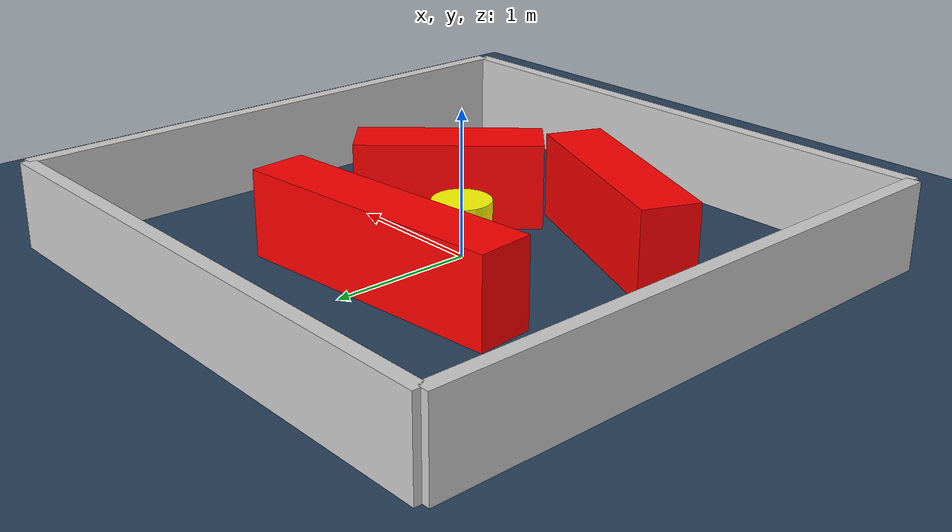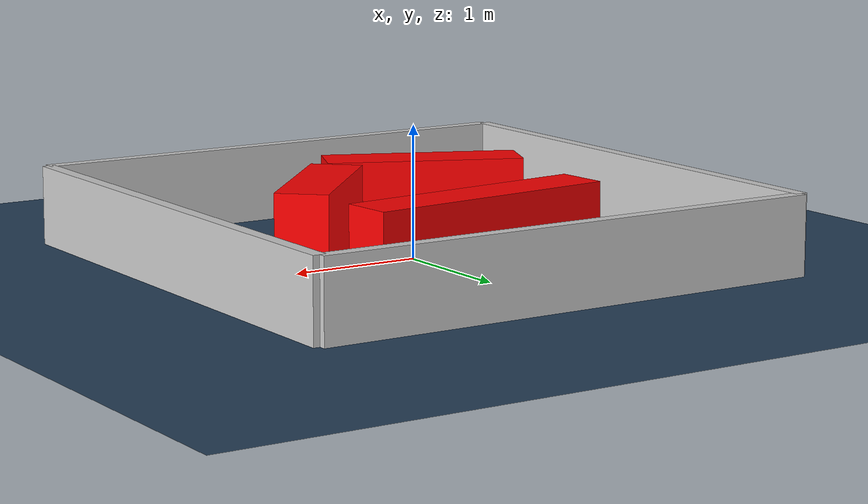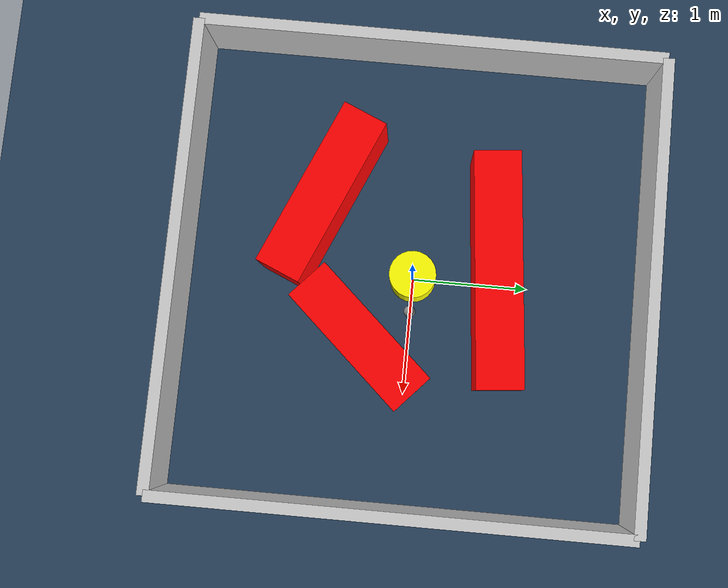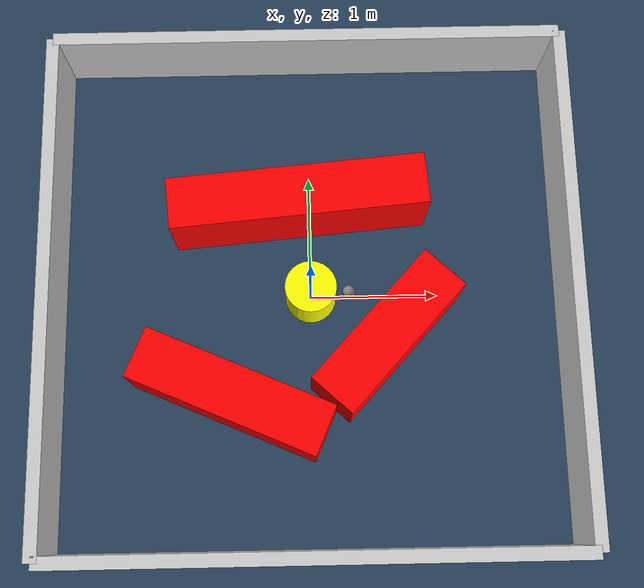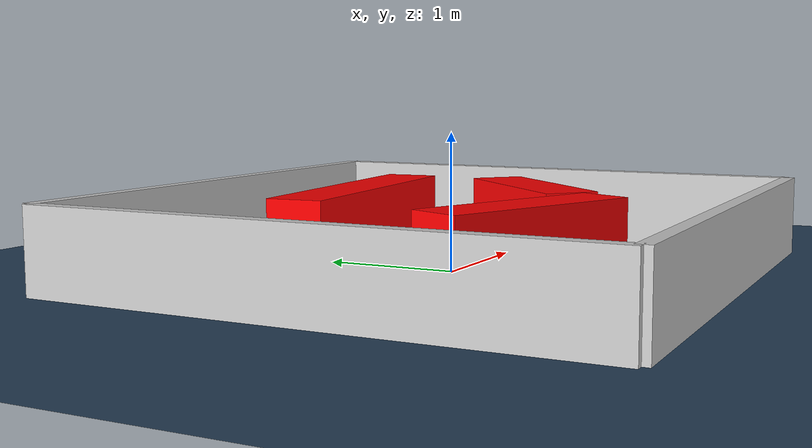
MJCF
<?xml version="1.0" ?>
<mujoco model="generated_environment">
  <option timestep="0.01" integrator="RK4" cone="elliptic"/>
  <default>
    <geom density="1"/>
  </default>
  <asset>
    <texture builtin="gradient" height="3072" rgb1="0.3 0.5 0.7" rgb2="0 0 0" type="skybox" width="512"/>
    <texture builtin="checker" height="300" mark="edge" markrgb="0.8 0.8 0.8" name="groundplane" rgb1="0.2 0.3 0.4" rgb2="0.1 0.2 0.3" type="2d" width="300"/>
    <material name="groundplane" reflectance="0.2" texrepeat="5 5" texture="groundplane" texuniform="true"/>
    <material name="robot" rgba="0.0 1.0 0.0 1"/>
  </asset>
  <worldbody>
    <light dir="0 0 -1" directional="true" pos="0 0 1.5"/>
    <geom condim="4" friction="1.0 0.005 0.001" material="groundplane" name="floor" size="0 0 0.05" type="plane"/>
    <body name="walls">
      <geom name="wall_1" condim="4" pos="-2.0 0.0 0.3" rgba="0.800000011920929 0.800000011920929 0.800000011920929 1.0" size="0.05 2.0 0.3" type="box"/>
      <geom name="wall_2" condim="4" pos="2.0 0.0 0.3" rgba="0.800000011920929 0.800000011920929 0.800000011920929 1.0" size="0.05 2.0 0.3" type="box"/>
      <geom name="wall_3" condim="4" pos="0.0 -2.0 0.3" rgba="0.800000011920929 0.800000011920929 0.800000011920929 1.0" size="2.0 0.05 0.3" type="box"/>
      <geom name="wall_4" condim="4" pos="0.0 2.0 0.3" rgba="0.800000011920929 0.800000011920929 0.800000011920929 1.0" size="2.0 0.05 0.3" type="box"/>
    </body>
    <body name="robot">
      <joint name="joint_x" type="slide" pos="0 0 0" axis="1 0 0"/>
      <joint name="joint_y" type="slide" pos="0 0 0" axis="0 1 0"/>
      <geom name="robot" type="sphere" pos="0.3 0.0 0.2" size="0.05" mass="5." friction="1.0 0.005 0.0001" condim="4" rgba="0.5 0.5 0.5 1.0"/>
      <site name="sensor_ball"/>
    </body>
    <body name="obstacle_movable_1">
      <geom name="obstacle_movable_1" condim="4" pos="0.0 0.0 0.2" euler="0 0 0.0" friction="1.0 0.005 0.001" rgba="1.0 1.0 0.0 1.0" size="0.2 0.2 0.0" type="cylinder" mass="0.1"/>
      <joint type="free"/>
    </body>
    <body name="obstacle_2_static">
      <geom name="obstacle_2_static" condim="4" pos="-0.6040686727497303 -0.8146959221040748 0.3" euler="0 0 156.563110257686" friction="1.0 0.005 0.001" rgba="1 0 0 1" size="0.7603385197980079 0.2 0.3" type="box"/>
    </body>
    <body name="obstacle_3_static">
      <geom name="obstacle_3_static" condim="4" pos="0.5724628226647737 -0.38969433313319524 0.3" euler="0 0 227.44809514779047" friction="1.0 0.005 0.001" rgba="1 0 0 1" size="0.6451403335414043 0.2 0.3" type="box"/>
    </body>
    <body name="obstacle_4_static">
      <geom name="obstacle_4_static" condim="4" pos="-0.08685815652049222 0.7080086333553093 0.3" euler="0 0 185.0622368613533" friction="1.0 0.005 0.001" rgba="1 0 0 1" size="0.9972136635227038 0.2 0.3" type="box"/>
    </body>
  </worldbody>
  <actuator>
    <motor name="actuator_x" joint="joint_x" gear="1" ctrlrange="-1 1"/>
    <motor name="actuator_y" joint="joint_y" gear="1" ctrlrange="-1 1"/>
  </actuator>
</mujoco>
